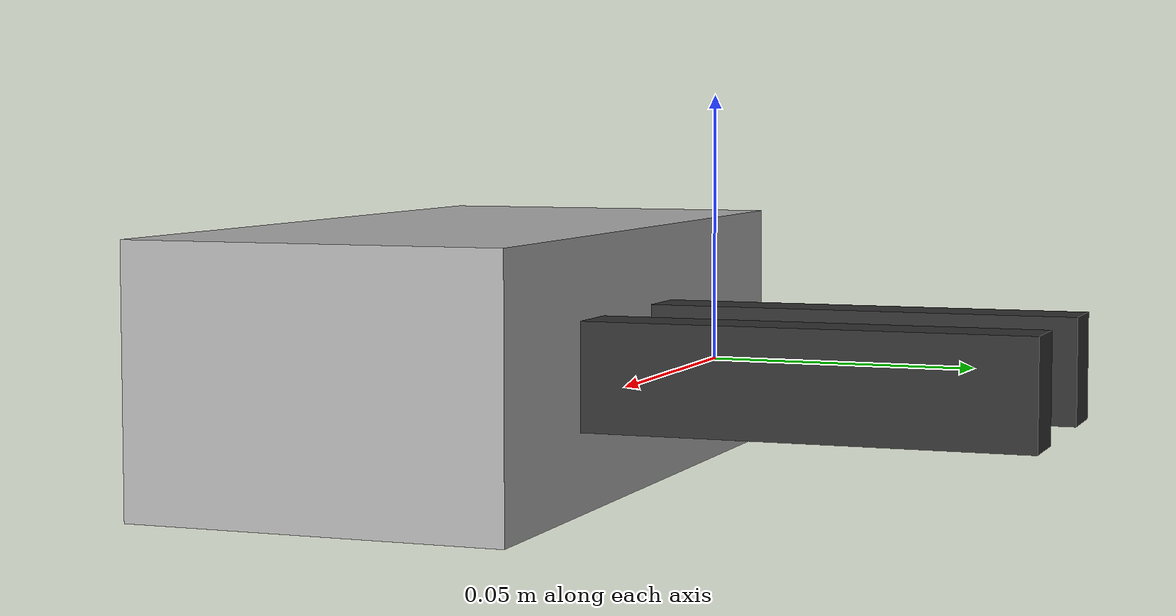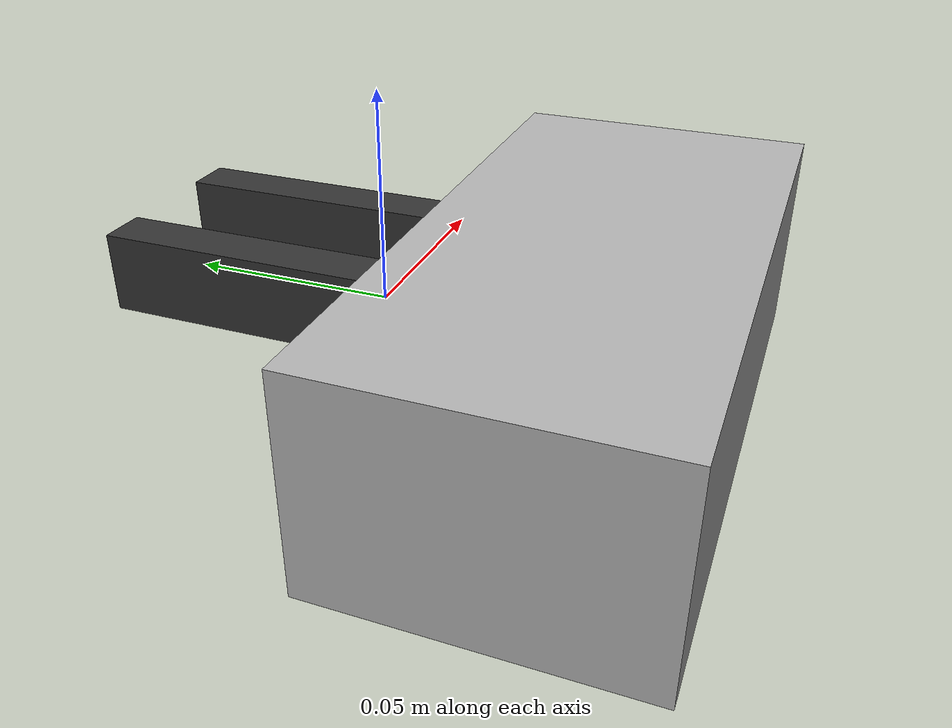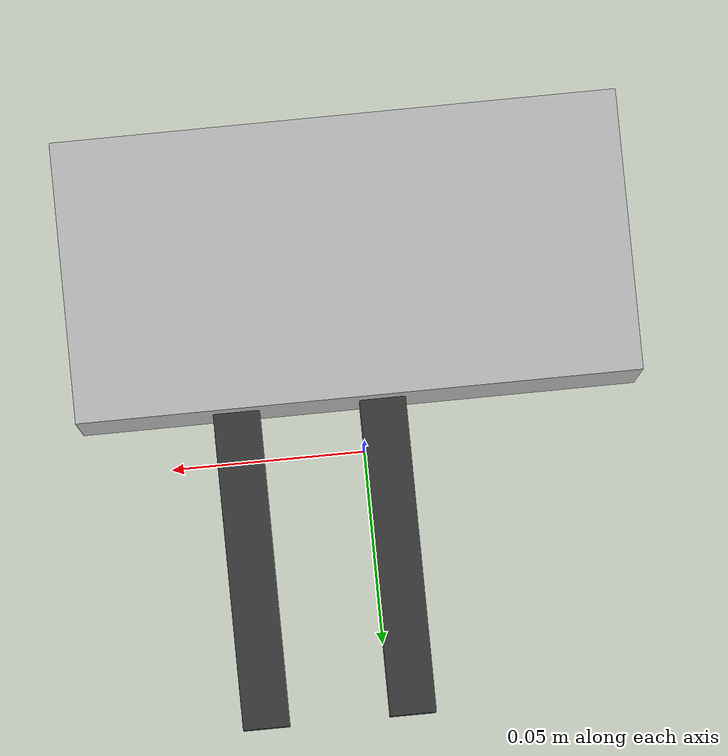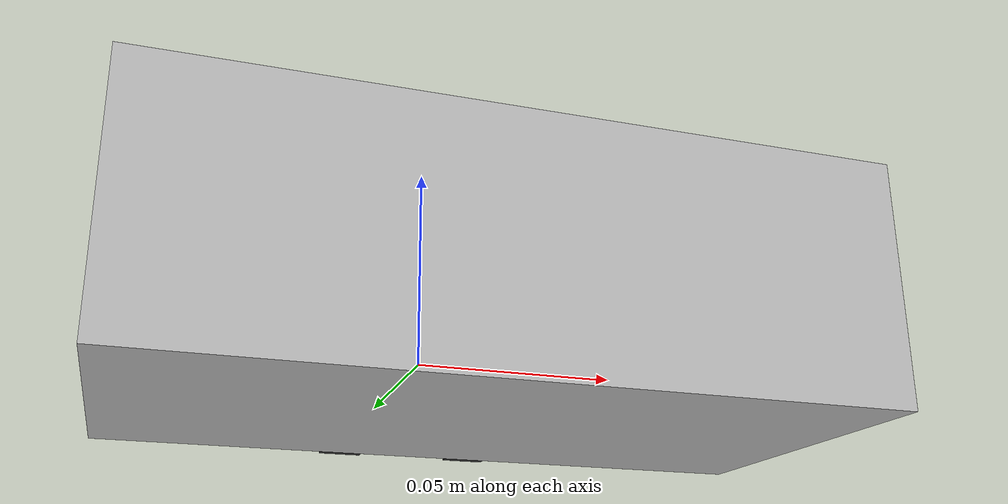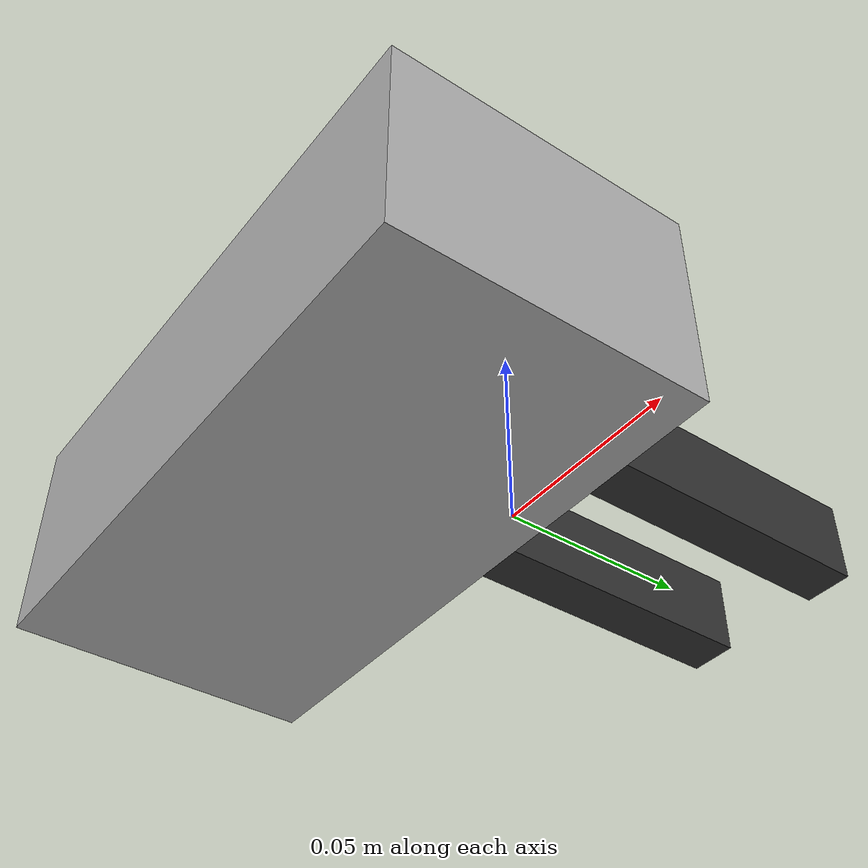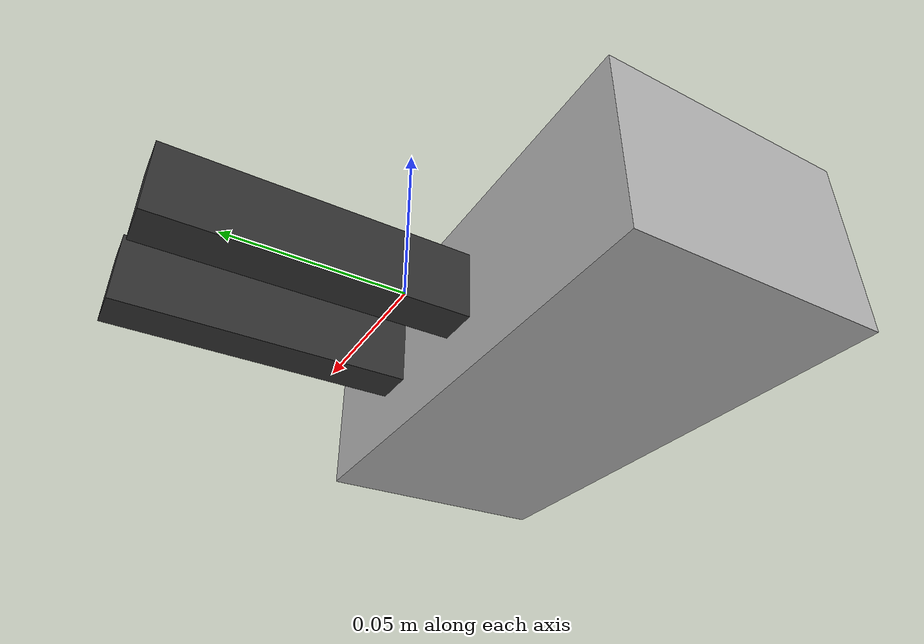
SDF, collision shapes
<?xml version="1.0"?>
<!-- This sdf file is based on schunk_wsg_50.sdf -->
<sdf version="1.7">
  <model name="Schunk_Gripper">

    <!-- New base link for the gripper -->
    <link name="base_wsg">
      <pose>0 0 0 0 0 0</pose>
      <inertial>
        <mass>0.1</mass>
        <inertia>
          <ixx>0.001</ixx>
          <ixy>0</ixy>
          <ixz>0</ixz>
          <iyy>0.001</iyy>
          <iyz>0</iyz>
          <izz>0.001</izz>
        </inertia>
      </inertial>
    </link>
    <!-- Frame attached to gripper_base -->
    <frame name="wsg_base_frame">
      <pose relative_to="base_wsg"/>
    </frame>

    <link name="body">
      <pose>0 -0.049133 0 0 0 0</pose>
      <inertial>
        <mass>0.988882</mass>
        <inertia>
          <ixx>0.162992</ixx>
          <ixy>0</ixy>
          <ixz>0</ixz>
          <iyy>0.162992</iyy>
          <iyz>0</iyz>
          <izz>0.164814</izz>
        </inertia>
      </inertial>
      <visual name="visual">
        <geometry>
          <mesh>
            <scale>1 1 1</scale>
            <uri>package://drake_models/wsg_50_description/meshes/wsg_body.gltf</uri>
          </mesh>
        </geometry>
        <material>
          <diffuse>0.7 0.7 0.7 1</diffuse>
        </material>
      </visual>
      <collision name="collision">
        <geometry>
          <box>
            <size>0.146 0.0725 0.05</size>
          </box>
        </geometry>
        <surface>
          <friction>
            <ode>
              <mu>1</mu>
              <mu2>1</mu2>
              <fdir1>0 0 0</fdir1>
              <slip1>0</slip1>
              <slip2>0</slip2>
            </ode>
            <torsional>
              <coefficient>1</coefficient>
              <patch_radius>0</patch_radius>
              <surface_radius>0</surface_radius>
              <use_patch_radius>1</use_patch_radius>
              <ode>
                <slip>0</slip>
              </ode>
            </torsional>
          </friction>
          <bounce>
            <restitution_coefficient>0</restitution_coefficient>
            <threshold>1e+06</threshold>
          </bounce>
          <contact>
            <collide_without_contact>0</collide_without_contact>
            <collide_without_contact_bitmask>1</collide_without_contact_bitmask>
            <collide_bitmask>1</collide_bitmask>
            <ode>
              <soft_cfm>0</soft_cfm>
              <soft_erp>0.2</soft_erp>
              <kp>1e+13</kp>
              <kd>1</kd>
              <max_vel>0.01</max_vel>
              <min_depth>0</min_depth>
            </ode>
            <bullet>
              <split_impulse>1</split_impulse>
              <split_impulse_penetration_threshold>-0.01</split_impulse_penetration_threshold>
              <soft_cfm>0</soft_cfm>
              <soft_erp>0.2</soft_erp>
              <kp>1e+13</kp>
              <kd>1</kd>
            </bullet>
          </contact>
        </surface>
      </collision>
    </link>
    <frame name="body_frame">
      <pose relative_to="body"/>
    </frame>

    <link name="left_finger">
      <pose>-0.006 0.028 0 0 3.141592 0</pose>
      <inertial>
        <mass>0.05</mass>
        <inertia>
          <ixx>0.16</ixx>
          <ixy>0</ixy>
          <ixz>0</ixz>
          <iyy>0.16</iyy>
          <iyz>0</iyz>
          <izz>0.16</izz>
        </inertia>
      </inertial>
      <visual name="visual">
        <geometry>
          <mesh>
            <scale>1 1 1</scale>
            <uri>package://drake_models/wsg_50_description/meshes/finger_without_tip.gltf</uri>
          </mesh>
        </geometry>
        <material>
          <diffuse>0.2 0.2 0.2 1</diffuse>
        </material>
      </visual>
      <collision name="collision">
        <geometry>
          <box>
            <size>0.012 0.082 0.02</size>
          </box>
        </geometry>
        <surface>
          <friction>
            <ode>
              <mu>1</mu>
              <mu2>1</mu2>
              <fdir1>0 0 0</fdir1>
              <slip1>0</slip1>
              <slip2>0</slip2>
            </ode>
            <torsional>
              <coefficient>1</coefficient>
              <patch_radius>0</patch_radius>
              <surface_radius>0</surface_radius>
              <use_patch_radius>1</use_patch_radius>
              <ode>
                <slip>0</slip>
              </ode>
            </torsional>
          </friction>
          <bounce>
            <restitution_coefficient>0</restitution_coefficient>
            <threshold>1e+06</threshold>
          </bounce>
          <contact>
            <collide_without_contact>0</collide_without_contact>
            <collide_without_contact_bitmask>1</collide_without_contact_bitmask>
            <collide_bitmask>1</collide_bitmask>
            <ode>
              <soft_cfm>0</soft_cfm>
              <soft_erp>0.2</soft_erp>
              <kp>1e+13</kp>
              <kd>1</kd>
              <max_vel>0.01</max_vel>
              <min_depth>0</min_depth>
            </ode>
            <bullet>
              <split_impulse>1</split_impulse>
              <split_impulse_penetration_threshold>-0.01</split_impulse_penetration_threshold>
              <soft_cfm>0</soft_cfm>
              <soft_erp>0.2</soft_erp>
              <kp>1e+13</kp>
              <kd>1</kd>
            </bullet>
          </contact>
        </surface>
      </collision>
    </link>

    <link name="right_finger">
      <pose>0.032 0.028 0 0 0 0</pose>
      <inertial>
        <mass>0.05</mass>
        <inertia>
          <ixx>0.16</ixx>
          <ixy>0</ixy>
          <ixz>0</ixz>
          <iyy>0.16</iyy>
          <iyz>0</iyz>
          <izz>0.16</izz>
        </inertia>
      </inertial>
      <visual name="visual">
        <geometry>
          <mesh>
            <scale>1 1 1</scale>
            <uri>package://drake_models/wsg_50_description/meshes/finger_without_tip.gltf</uri>
          </mesh>
        </geometry>
        <material>
          <diffuse>0.2 0.2 0.2 1</diffuse>
        </material>
      </visual>
      <collision name="collision">
        <geometry>
          <box>
            <size>0.012 0.082 0.02</size>
          </box>
        </geometry>
        <surface>
          <friction>
            <ode>
              <mu>1</mu>
              <mu2>1</mu2>
              <fdir1>0 0 0</fdir1>
              <slip1>0</slip1>
              <slip2>0</slip2>
            </ode>
            <torsional>
              <coefficient>1</coefficient>
              <patch_radius>0</patch_radius>
              <surface_radius>0</surface_radius>
              <use_patch_radius>1</use_patch_radius>
              <ode>
                <slip>0</slip>
              </ode>
            </torsional>
          </friction>
          <bounce>
            <restitution_coefficient>0</restitution_coefficient>
            <threshold>1e+06</threshold>
          </bounce>
          <contact>
            <collide_without_contact>0</collide_without_contact>
            <collide_without_contact_bitmask>1</collide_without_contact_bitmask>
            <collide_bitmask>1</collide_bitmask>
            <ode>
              <soft_cfm>0</soft_cfm>
              <soft_erp>0.2</soft_erp>
              <kp>1e+13</kp>
              <kd>1</kd>
              <max_vel>0.01</max_vel>
              <min_depth>0</min_depth>
            </ode>
            <bullet>
              <split_impulse>1</split_impulse>
              <split_impulse_penetration_threshold>-0.01</split_impulse_penetration_threshold>
              <soft_cfm>0</soft_cfm>
              <soft_erp>0.2</soft_erp>
              <kp>1e+13</kp>
              <kd>1</kd>
            </bullet>
          </contact>
        </surface>
      </collision>
    </link>

    <joint name="left_finger_sliding_joint" type="prismatic">
      <parent>body</parent>
      <child>left_finger</child>
      <axis>
        <xyz>-1 0 0</xyz>
        <!-- Drake attaches an actuator to all and only joints with a nonzero
             effort limit. -->
        <limit>
          <lower>-0.055</lower>
          <upper>0</upper>
          <effort>80</effort>
          <stiffness>15000</stiffness>
        </limit>
        <dynamics>
          <spring_reference>0</spring_reference>
          <spring_stiffness>0</spring_stiffness>
          <damping>0</damping>
          <friction>0</friction>
        </dynamics>
      </axis>
    </joint>

    <joint name="right_finger_sliding_joint" type="fixed">
      <parent>body</parent>
      <child>right_finger</child>
      <pose>0 0 0 0 0 0</pose>
        <!-- Drake attaches an actuator to all and only joints with a nonzero
             effort limit. -->
    </joint>

    <!-- Revolute joint between gripper_base and body -->
    <joint name="base_revolute_joint" type="fixed">
      <parent>base_wsg</parent>
      <child>body</child>
      <pose>0 0 0 0 0 0</pose>
    </joint>
    <static>0</static>
  </model>
</sdf>
